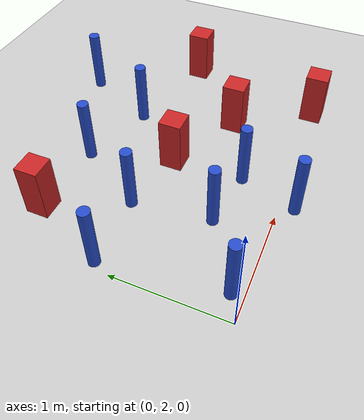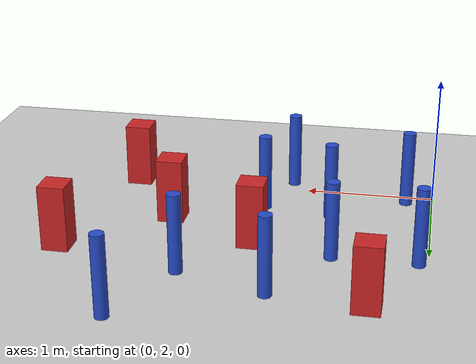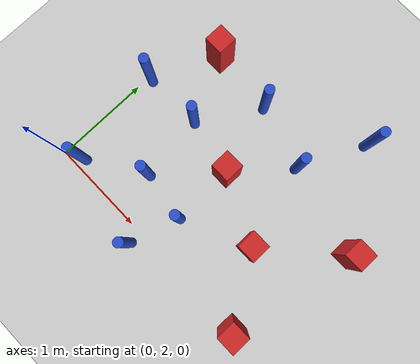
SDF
<sdf version="1.6">
 <world name="default">
  <model name="ground_plane">
   <static>1</static>
   <link name="link">
    <collision name="collision">
     <geometry><plane><normal>0 0 1</normal><size>100 100</size></plane></geometry>
     <surface><friction><ode><mu>100</mu><mu2>50</mu2></ode></friction></surface>
    </collision>
    <visual name="visual">
     <cast_shadows>0</cast_shadows>
     <geometry><plane><normal>0 0 1</normal><size>100 100</size></plane></geometry>
     <material>
      <ambient>1.0 1.0 1.0 1.0</ambient>
      <diffuse>0.8 0.8 0.8 1.0</diffuse>
      <specular>0.01 0.01 0.01 1.000000</specular>
     </material>
    </visual>
   </link>
  </model>
  <model name="pole_obstacle15">
   <static>true</static>
   <pose>1.73410881993 3.55879253079 -9.47619616065e-06 5.49618799737e-07 2.36310414062e-07 -1.55090534798e-07</pose>
   <link name="link">
    <pose>0 0 0.3 0 -0 0</pose>
    <inertial>
     <mass>1</mass>
     <inertia><ixx>0.145833</ixx><ixy>0</ixy><ixz>0</ixz><iyy>0.145833</iyy><iyz>0</iyz><izz>0.125</izz></inertia>
    </inertial>
    <collision name="collision">
     <geometry><cylinder><radius>0.05</radius><length>.6</length></cylinder></geometry>
    </collision>
    <visual name="visual">
     <geometry><cylinder><radius>0.05</radius><length>.6</length></cylinder></geometry>
     <material>
      <script><name>Gazebo/Blue</name><uri>file://media/materials/scripts/gazebo.material</uri></script>
     </material>
    </visual>
   </link>
  </model>
  <model name="pole_obstacle86">
   <static>true</static>
   <pose>0.207607833617 2.10428420467 -9.4761961606e-06 5.49618799729e-07 2.36310413995e-07 -1.55090534826e-07</pose>
   <link name="link">
    <pose>0 0 0.3 0 -0 0</pose>
    <inertial>
     <mass>1</mass>
     <inertia><ixx>0.145833</ixx><ixy>0</ixy><ixz>0</ixz><iyy>0.145833</iyy><iyz>0</iyz><izz>0.125</izz></inertia>
    </inertial>
    <collision name="collision">
     <geometry><cylinder><radius>0.05</radius><length>.6</length></cylinder></geometry>
    </collision>
    <visual name="visual">
     <geometry><cylinder><radius>0.05</radius><length>.6</length></cylinder></geometry>
     <material>
      <script><name>Gazebo/Blue</name><uri>file://media/materials/scripts/gazebo.material</uri></script>
     </material>
    </visual>
   </link>
  </model>
  <model name="pole_obstacle103">
   <static>true</static>
   <pose>0.0662306205233 3.14885479916 -9.4761961606e-06 5.49618799729e-07 2.36310413996e-07 -1.55090534826e-07</pose>
   <link name="link">
    <pose>0 0 0.3 0 -0 0</pose>
    <inertial>
     <mass>1</mass>
     <inertia><ixx>0.145833</ixx><ixy>0</ixy><ixz>0</ixz><iyy>0.145833</iyy><iyz>0</iyz><izz>0.125</izz></inertia>
    </inertial>
    <collision name="collision">
     <geometry><cylinder><radius>0.05</radius><length>.6</length></cylinder></geometry>
    </collision>
    <visual name="visual">
     <geometry><cylinder><radius>0.05</radius><length>.6</length></cylinder></geometry>
     <material>
      <script><name>Gazebo/Blue</name><uri>file://media/materials/scripts/gazebo.material</uri></script>
     </material>
    </visual>
   </link>
  </model>
  <model name="square_post_obstacle93">
   <static>true</static>
   <pose>1.29102938515 3.02417807815 -6.11067671241e-07 -5.50515727128e-06 -8.79689657224e-07 2.37013304536e-05</pose>
   <link name="link">
    <pose>0 0 0.25 0 -0 0</pose>
    <inertial>
     <mass>100</mass>
     <inertia>
      <ixx>0.166667</ixx>
      <ixy>0</ixy>
      <ixz>0</ixz>
      <iyy>0.166667</iyy>
      <iyz>0</iyz>
      <izz>0.166667</izz>
     </inertia>
    </inertial>
    <collision name="collision"><geometry><box><size>.2 .2 .5</size></box></geometry></collision>
    <visual name="visual">
     <geometry><box><size>.2 .2 .5</size></box></geometry>
     <material>
      <script><name>Gazebo/Red</name><uri>file://media/materials/scripts/gazebo.material</uri></script>
     </material>
    </visual>
   </link>
  </model>
  <model name="square_post_obstacle98">
   <static>true</static>
   <pose>2.40844850043 2.02243445875 -6.11067671241e-07 -5.50515727128e-06 -8.79689657224e-07 2.37013304536e-05</pose>
   <link name="link">
    <pose>0 0 0.25 0 -0 0</pose>
    <inertial>
     <mass>100</mass>
     <inertia>
      <ixx>0.166667</ixx>
      <ixy>0</ixy>
      <ixz>0</ixz>
      <iyy>0.166667</iyy>
      <iyz>0</iyz>
      <izz>0.166667</izz>
     </inertia>
    </inertial>
    <collision name="collision"><geometry><box><size>.2 .2 .5</size></box></geometry></collision>
    <visual name="visual">
     <geometry><box><size>.2 .2 .5</size></box></geometry>
     <material>
      <script><name>Gazebo/Red</name><uri>file://media/materials/scripts/gazebo.material</uri></script>
     </material>
    </visual>
   </link>
  </model>
  <model name="pole_obstacle116">
   <static>true</static>
   <pose>1.13665969465 1.87317020811 -9.47619616065e-06 5.49618799737e-07 2.36310414065e-07 -1.55090534798e-07</pose>
   <link name="link">
    <pose>0 0 0.3 0 -0 0</pose>
    <inertial>
     <mass>1</mass>
     <inertia><ixx>0.145833</ixx><ixy>0</ixy><ixz>0</ixz><iyy>0.145833</iyy><iyz>0</iyz><izz>0.125</izz></inertia>
    </inertial>
    <collision name="collision">
     <geometry><cylinder><radius>0.05</radius><length>.6</length></cylinder></geometry>
    </collision>
    <visual name="visual">
     <geometry><cylinder><radius>0.05</radius><length>.6</length></cylinder></geometry>
     <material>
      <script><name>Gazebo/Blue</name><uri>file://media/materials/scripts/gazebo.material</uri></script>
     </material>
    </visual>
   </link>
  </model>
  <model name="pole_obstacle125">
   <static>true</static>
   <pose>0.776002667412 2.46084765203 -9.47619616065e-06 5.49618799737e-07 2.36310414066e-07 -1.55090534797e-07</pose>
   <link name="link">
    <pose>0 0 0.3 0 -0 0</pose>
    <inertial>
     <mass>1</mass>
     <inertia><ixx>0.145833</ixx><ixy>0</ixy><ixz>0</ixz><iyy>0.145833</iyy><iyz>0</iyz><izz>0.125</izz></inertia>
    </inertial>
    <collision name="collision">
     <geometry><cylinder><radius>0.05</radius><length>.6</length></cylinder></geometry>
    </collision>
    <visual name="visual">
     <geometry><cylinder><radius>0.05</radius><length>.6</length></cylinder></geometry>
     <material>
      <script><name>Gazebo/Blue</name><uri>file://media/materials/scripts/gazebo.material</uri></script>
     </material>
    </visual>
   </link>
  </model>
  <model name="square_post_obstacle114">
   <static>true</static>
   <pose>2.67754129064 3.31751709524 -6.11067671241e-07 -5.50515727128e-06 -8.79689657224e-07 2.37013304536e-05</pose>
   <link name="link">
    <pose>0 0 0.25 0 -0 0</pose>
    <inertial>
     <mass>100</mass>
     <inertia>
      <ixx>0.166667</ixx>
      <ixy>0</ixy>
      <ixz>0</ixz>
      <iyy>0.166667</iyy>
      <iyz>0</iyz>
      <izz>0.166667</izz>
     </inertia>
    </inertial>
    <collision name="collision"><geometry><box><size>.2 .2 .5</size></box></geometry></collision>
    <visual name="visual">
     <geometry><box><size>.2 .2 .5</size></box></geometry>
     <material>
      <script><name>Gazebo/Red</name><uri>file://media/materials/scripts/gazebo.material</uri></script>
     </material>
    </visual>
   </link>
  </model>
  <model name="square_post_obstacle120">
   <static>true</static>
   <pose>1.97222718251 2.69296989959 -6.11067671241e-07 -5.50515727128e-06 -8.79689657224e-07 2.37013304536e-05</pose>
   <link name="link">
    <pose>0 0 0.25 0 -0 0</pose>
    <inertial>
     <mass>100</mass>
     <inertia>
      <ixx>0.166667</ixx>
      <ixy>0</ixy>
      <ixz>0</ixz>
      <iyy>0.166667</iyy>
      <iyz>0</iyz>
      <izz>0.166667</izz>
     </inertia>
    </inertial>
    <collision name="collision"><geometry><box><size>.2 .2 .5</size></box></geometry></collision>
    <visual name="visual">
     <geometry><box><size>.2 .2 .5</size></box></geometry>
     <material>
      <script><name>Gazebo/Red</name><uri>file://media/materials/scripts/gazebo.material</uri></script>
     </material>
    </visual>
   </link>
  </model>
  <model name="square_post_obstacle158">
   <static>true</static>
   <pose>0.381604929719 3.81558001968 -6.11067671241e-07 -5.50515727128e-06 -8.79689657224e-07 2.37013304536e-05</pose>
   <link name="link">
    <pose>0 0 0.25 0 -0 0</pose>
    <inertial>
     <mass>100</mass>
     <inertia>
      <ixx>0.166667</ixx>
      <ixy>0</ixy>
      <ixz>0</ixz>
      <iyy>0.166667</iyy>
      <iyz>0</iyz>
      <izz>0.166667</izz>
     </inertia>
    </inertial>
    <collision name="collision"><geometry><box><size>.2 .2 .5</size></box></geometry></collision>
    <visual name="visual">
     <geometry><box><size>.2 .2 .5</size></box></geometry>
     <material>
      <script><name>Gazebo/Red</name><uri>file://media/materials/scripts/gazebo.material</uri></script>
     </material>
    </visual>
   </link>
  </model>
  <model name="pole_obstacle177">
   <static>true</static>
   <pose>1.3002458474 2.38286876959 -9.47619616065e-06 5.49618799737e-07 2.36310414062e-07 -1.55090534798e-07</pose>
   <link name="link">
    <pose>0 0 0.3 0 -0 0</pose>
    <inertial>
     <mass>1</mass>
     <inertia><ixx>0.145833</ixx><ixy>0</ixy><ixz>0</ixz><iyy>0.145833</iyy><iyz>0</iyz><izz>0.125</izz></inertia>
    </inertial>
    <collision name="collision">
     <geometry><cylinder><radius>0.05</radius><length>.6</length></cylinder></geometry>
    </collision>
    <visual name="visual">
     <geometry><cylinder><radius>0.05</radius><length>.6</length></cylinder></geometry>
     <material>
      <script><name>Gazebo/Blue</name><uri>file://media/materials/scripts/gazebo.material</uri></script>
     </material>
    </visual>
   </link>
  </model>
  <model name="pole_obstacle186">
   <static>true</static>
   <pose>1.06718408021 3.76642492198 -9.47619616065e-06 5.49618799737e-07 2.36310414062e-07 -1.55090534798e-07</pose>
   <link name="link">
    <pose>0 0 0.3 0 -0 0</pose>
    <inertial>
     <mass>1</mass>
     <inertia><ixx>0.145833</ixx><ixy>0</ixy><ixz>0</ixz><iyy>0.145833</iyy><iyz>0</iyz><izz>0.125</izz></inertia>
    </inertial>
    <collision name="collision">
     <geometry><cylinder><radius>0.05</radius><length>.6</length></cylinder></geometry>
    </collision>
    <visual name="visual">
     <geometry><cylinder><radius>0.05</radius><length>.6</length></cylinder></geometry>
     <material>
      <script><name>Gazebo/Blue</name><uri>file://media/materials/scripts/gazebo.material</uri></script>
     </material>
    </visual>
   </link>
  </model>
  <model name="pole_obstacle208">
   <static>true</static>
   <pose>0.691370719465 3.15539341288 -9.47619616065e-06 5.49618799737e-07 2.36310414066e-07 -1.55090534797e-07</pose>
   <link name="link">
    <pose>0 0 0.3 0 -0 0</pose>
    <inertial>
     <mass>1</mass>
     <inertia><ixx>0.145833</ixx><ixy>0</ixy><ixz>0</ixz><iyy>0.145833</iyy><iyz>0</iyz><izz>0.125</izz></inertia>
    </inertial>
    <collision name="collision">
     <geometry><cylinder><radius>0.05</radius><length>.6</length></cylinder></geometry>
    </collision>
    <visual name="visual">
     <geometry><cylinder><radius>0.05</radius><length>.6</length></cylinder></geometry>
     <material>
      <script><name>Gazebo/Blue</name><uri>file://media/materials/scripts/gazebo.material</uri></script>
     </material>
    </visual>
   </link>
  </model>
  <model name="pole_obstacle216">
   <static>true</static>
   <pose>2.05301385025 4.23247736398 -9.47619616065e-06 5.49618799738e-07 2.3631041406e-07 -1.55090534801e-07</pose>
   <link name="link">
    <pose>0 0 0.3 0 -0 0</pose>
    <inertial>
     <mass>1</mass>
     <inertia><ixx>0.145833</ixx><ixy>0</ixy><ixz>0</ixz><iyy>0.145833</iyy><iyz>0</iyz><izz>0.125</izz></inertia>
    </inertial>
    <collision name="collision">
     <geometry><cylinder><radius>0.05</radius><length>.6</length></cylinder></geometry>
    </collision>
    <visual name="visual">
     <geometry><cylinder><radius>0.05</radius><length>.6</length></cylinder></geometry>
     <material>
      <script><name>Gazebo/Blue</name><uri>file://media/materials/scripts/gazebo.material</uri></script>
     </material>
    </visual>
   </link>
  </model>
 </world>
</sdf>
